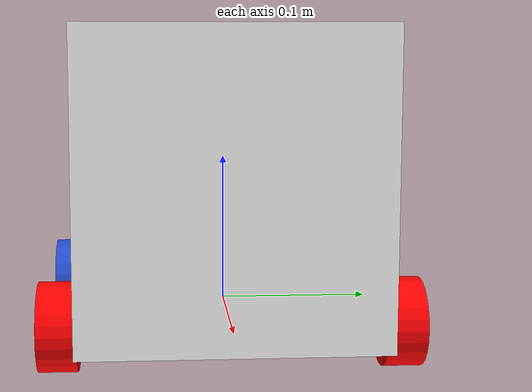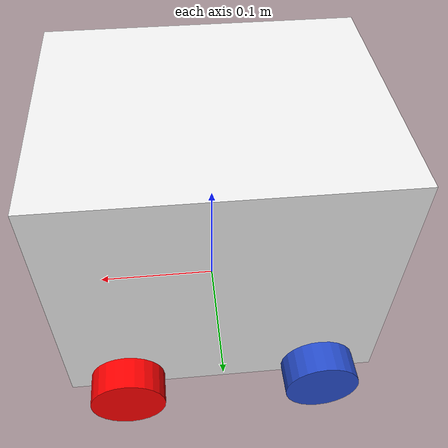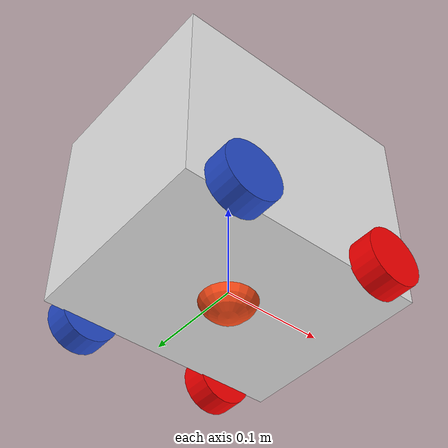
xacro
<?xml version="1.0"?>
<robot xmlns:xacro="http://www.ros.org/wiki/xacro"  name="robot">

    <xacro:include filename="inertial_macros.xacro"/>

<material name="white">
        <color rgba="1 1 1 1" />
    </material>

    <material name="orange">
        <color rgba="1 0.3 0.1 1" />
    </material>

    <material name="blue">
        <color rgba="0.2 0.2 1 1" />
    </material>

    <material name="black">
        <color rgba="0 0 0 1" />
    </material>

    <material name="red">
        <color rgba="1 0 0 1" />
    </material>

    <!--Base link-->

    <link name="base_link">

    </link>

    <!--Chassis link-->

    <joint name="chassis_joint" type="fixed">
        <parent link="base_link"/>
        <child link="chassis"/>
    </joint>

    <link name="chassis">
        <visual>
            <origin xyz="0.0 0.0 0.09"/>
            <geometry>
                <box size="0.241 0.195 0.2"/>
            </geometry>
        </visual>
        <collision>
            <origin xyz="0.0 0.0 0.09"/>
            <geometry>
                <box size="0.241 0.195 0.2"/>
            </geometry>
        </collision>
        <xacro:inertial_box mass="0.5" x="0.241" y="0.195" z="0.2">
            <origin xyz="0.0 0.0 0.09" rpy="0.0 0.0 0.0"/>
        </xacro:inertial_box>
    </link>

    <gazebo reference="chassis">
        <material>Gazebo/White</material>
    </gazebo>

    <!--Right Rear Wheel -->

    <joint name="Right_Rear_wheel_joint" type="continuous">
        <parent link="base_link"/>
        <child link="Right_Rear_wheel"/>
        <origin xyz="-0.075 0.109 0.0" rpy="-${pi/2} 0.0 0.0"/>
        <axis xyz="0.0 0.0 1"/>
    </joint>

    <link name="Right_Rear_wheel">
        <visual>
            <geometry>
                <cylinder radius="0.0285" length="0.025"/>
            </geometry>
            <material name="Blue"/>
        </visual>
        <collision>
            <geometry>
                <cylinder radius="0.0285" length="0.025"/>
            </geometry>
        </collision>
        <xacro:inertial_cylinder mass="0.1" length="0.025" radius="0.0285">
            <origin xyz="0.0 0.0 0.0" rpy="0.0 0.0 0.0"/>
        </xacro:inertial_cylinder>
    </link>

    <gazebo reference="Right_Rear_wheel">
        <material>Gazebo/Blue</material>
    </gazebo>

    <!--Right Front Wheel -->

    <joint name="Right_Front_wheel_joint" type="continuous">
        <parent link="base_link"/>
        <child link="Right_Front_wheel"/>
        <origin xyz="0.075 0.109 0.0" rpy="-${pi/2} 0.0 0.0"/>
        <axis xyz="0.0 0.0 1"/>
    </joint>

    <link name="Right_Front_wheel">
        <visual>
            <geometry>
                <cylinder radius="0.0285" length="0.025"/>
            </geometry>
            <material name="red"/>
        </visual>
        <collision>
            <geometry>
                <cylinder radius="0.0285" length="0.025"/>
            </geometry>
        </collision>
        <xacro:inertial_cylinder mass="0.1" length="0.025" radius="0.0285">
            <origin xyz="0.0 0.0 0.0" rpy="0.0 0.0 0.0"/>
        </xacro:inertial_cylinder>
    </link>

    <gazebo reference="Right_Front_wheel">
        <material>Gazebo/Red</material>
    </gazebo>

    <!--Left Rear Wheel -->

<joint name="left_Rear_wheel_joint" type="continuous">
        <parent link="base_link"/>
        <child link="Left_Rear_wheel"/>
        <origin xyz="-0.075 -0.109 0.0" rpy="-${pi/2} 0.0 0.0"/>
        <axis xyz="0.0 0.0 1"/>
    </joint>

    <link name="Left_Rear_wheel">
        <visual>
            <geometry>
                <cylinder radius="0.0285" length="0.025"/>
            </geometry>
            <material name="Blue"/>
        </visual>
        <collision>
            <geometry>
                <cylinder radius="0.0285" length="0.025"/>
            </geometry>
        </collision>
        <xacro:inertial_cylinder mass="0.1" length="0.025" radius="0.0285">
            <origin xyz="0.0 0.0 0.0" rpy="0.0 0.0 0.0"/>
        </xacro:inertial_cylinder>
    </link>

    <gazebo reference="Left_Rear_wheel">
        <material>Gazebo/Blue</material>
    </gazebo>

   <!--Left Front Wheel -->

    <joint name="Left_Front_wheel_joint" type="continuous">
        <parent link="base_link"/>
        <child link="Left_Front_wheel"/>
        <origin xyz="0.075 -0.109 0.0" rpy="-${pi/2} 0.0 0.0"/>
        <axis xyz="0.0 0.0 1"/>
    </joint>

    <link name="Left_Front_wheel">
        <visual>
            <geometry>
                <cylinder radius="0.0285" length="0.025"/>
            </geometry>
            <material name="red"/>
        </visual>
        <collision>
            <geometry>
                <cylinder radius="0.0285" length="0.025"/>
            </geometry>
        </collision>
        <xacro:inertial_cylinder mass="0.1" length="0.025" radius="0.0285">
            <origin xyz="0.0 0.0 0.0" rpy="0.0 0.0 0.0"/>
        </xacro:inertial_cylinder>
    </link>

    <gazebo reference="Left_Front_wheel">
        <material>Gazebo/Red</material>
    </gazebo>

     <!--Caster Wheel Link-->

     <joint name="caster_wheel_link" type="fixed">
        <parent link="chassis"/>
        <child link="caster_wheel"/>
        <origin xyz="0.0 0.0 0.0"/>
     </joint>

     <link name="caster_wheel">
        <visual>
            <geometry>
                <sphere radius="0.0285"/>
            </geometry>
            <material name="orange"/>
        </visual>
        <collision>
            <geometry>
                <sphere radius="0.0285"/>
            </geometry>
        </collision>
        <xacro:inertial_sphere mass="0.1" radius="0.0285">
            <origin xyz="0.0 0.0 0.0" rpy="0.0 0.0 0.0"/>
        </xacro:inertial_sphere>
     </link>

     <gazebo reference="caster_wheel">
        <material>Gazebo/Black</material>
        <!--coeffecient of frictiob-->
        <mu1 value="0.002"/>
        <mu2 value="0.002"/>
    </gazebo>

</robot>
